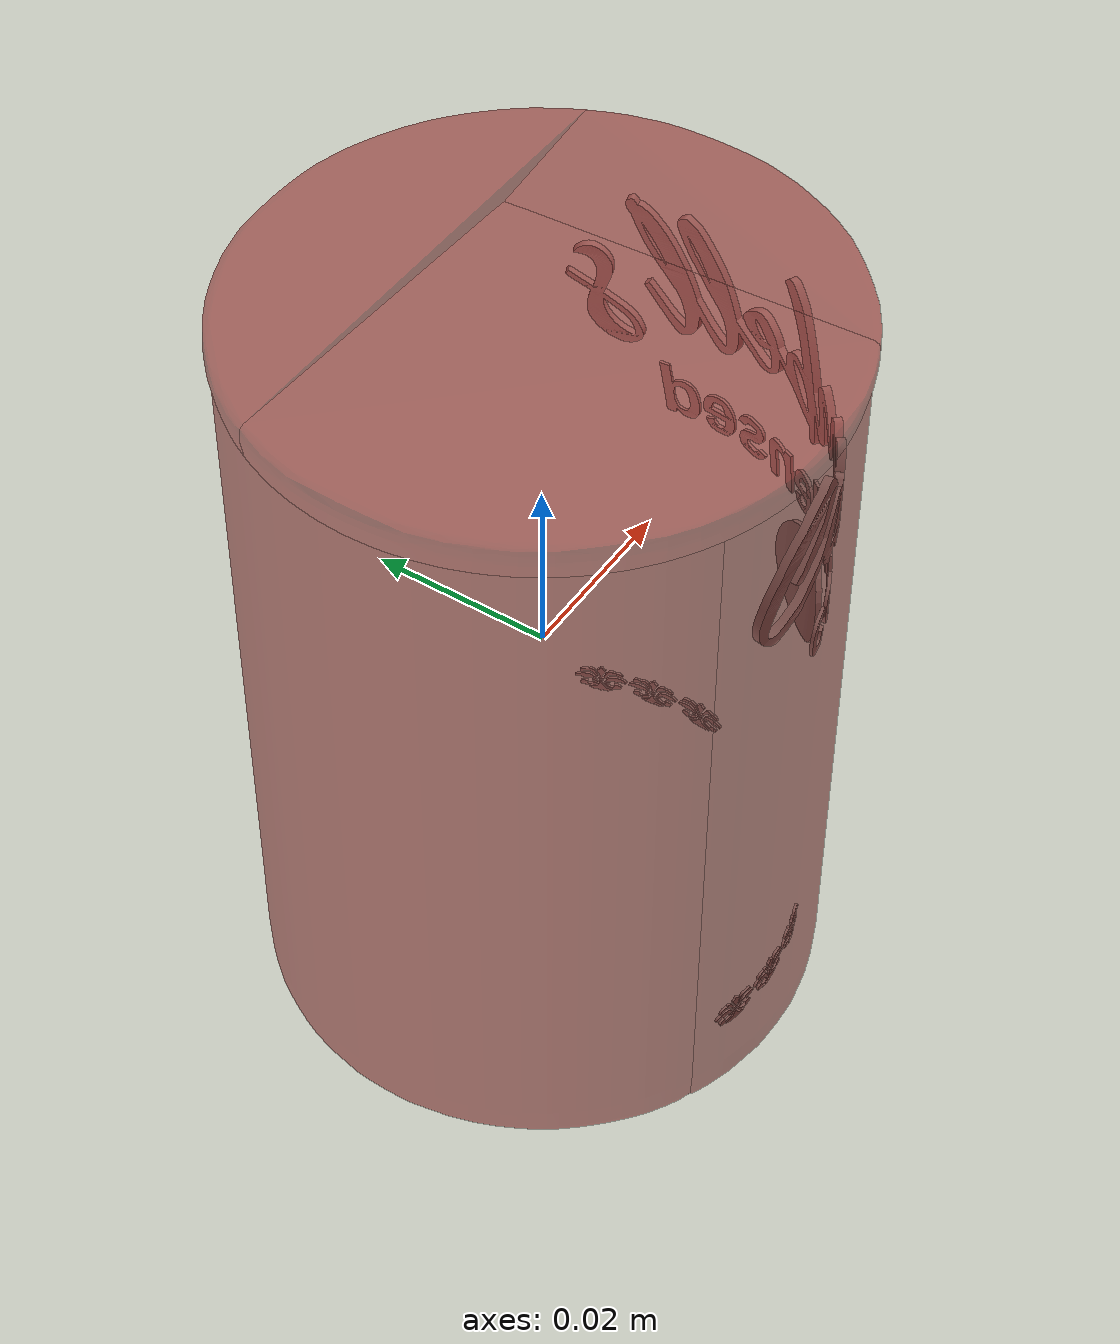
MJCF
<?xml version='1.0' encoding='utf-8'?>
<mujoco model="more_canned_food_22">
  <asset>
    <mesh file="visual/model_normalized_0.obj" name="model_normalized_0_vis" scale="0.08549999999999995 0.08549999999999995 0.08549999999999995" refquat="1.0 0.0 0.0 0.0" />
    <mesh file="visual/model_normalized_1.obj" name="model_normalized_1_vis" scale="0.08549999999999995 0.08549999999999995 0.08549999999999995" refquat="1.0 0.0 0.0 0.0" />
    <texture type="2d" name="image0" file="visual/image0.png" />
    <material name="Blik" texture="image0" specular="0.5" shininess="0.472394272" />
    <material name="Label" texture="image0" specular="0.5" shininess="0.37716637" />
    <mesh file="collision/collision_mesh_collision_0.obj" name="canned_collision_mesh_0" scale="0.08549999999999995 0.08549999999999995 0.08549999999999995" refquat="1.0 0.0 0.0 0.0" />
    <mesh file="collision/collision_mesh_collision_1.obj" name="canned_collision_mesh_1" scale="0.08549999999999995 0.08549999999999995 0.08549999999999995" refquat="1.0 0.0 0.0 0.0" />
    <mesh file="collision/collision_mesh_collision_2.obj" name="canned_collision_mesh_2" scale="0.08549999999999995 0.08549999999999995 0.08549999999999995" refquat="1.0 0.0 0.0 0.0" />
    <mesh file="collision/collision_mesh_collision_3.obj" name="canned_collision_mesh_3" scale="0.08549999999999995 0.08549999999999995 0.08549999999999995" refquat="1.0 0.0 0.0 0.0" />
    <mesh file="collision/collision_mesh_collision_4.obj" name="canned_collision_mesh_4" scale="0.08549999999999995 0.08549999999999995 0.08549999999999995" refquat="1.0 0.0 0.0 0.0" />
    <mesh file="collision/collision_mesh_collision_5.obj" name="canned_collision_mesh_5" scale="0.08549999999999995 0.08549999999999995 0.08549999999999995" refquat="1.0 0.0 0.0 0.0" />
  </asset>
  <default>
    <default class="region">
      <geom group="1" conaffinity="0" contype="0" rgba="0 1 0 0" mass="0" />
    </default>
    <default class="collision">
      <geom group="0" rgba="0.5 0 0 0.5" density="1084.127167207" />
    </default>
  </default>
  <worldbody>
    <body>
      <body name="object">
        <geom solimp="0.998 0.998 0.001" solref="0.001 1" density="108.412716721" friction="0.95 0.3 0.1" type="mesh" mesh="model_normalized_0_vis" conaffinity="0" contype="0" group="1" material="Blik" />
        <geom solimp="0.998 0.998 0.001" solref="0.001 1" density="108.412716721" friction="0.95 0.3 0.1" type="mesh" mesh="model_normalized_1_vis" conaffinity="0" contype="0" group="1" material="Label" />
        <geom class="region" name="reg_bbox" type="box" pos="1.2803625000000339e-06 0.0 -1.1486925000000447e-05" size="0.030649208512499977 0.03065221169999998 0.043101770084999984" />
        <geom mesh="canned_collision_mesh_0" type="mesh" class="collision" />
        <geom mesh="canned_collision_mesh_1" type="mesh" class="collision" />
        <geom mesh="canned_collision_mesh_2" type="mesh" class="collision" />
        <geom mesh="canned_collision_mesh_3" type="mesh" class="collision" />
        <geom mesh="canned_collision_mesh_4" type="mesh" class="collision" />
        <geom mesh="canned_collision_mesh_5" type="mesh" class="collision" />
      </body>
    </body>
  </worldbody>
</mujoco>
